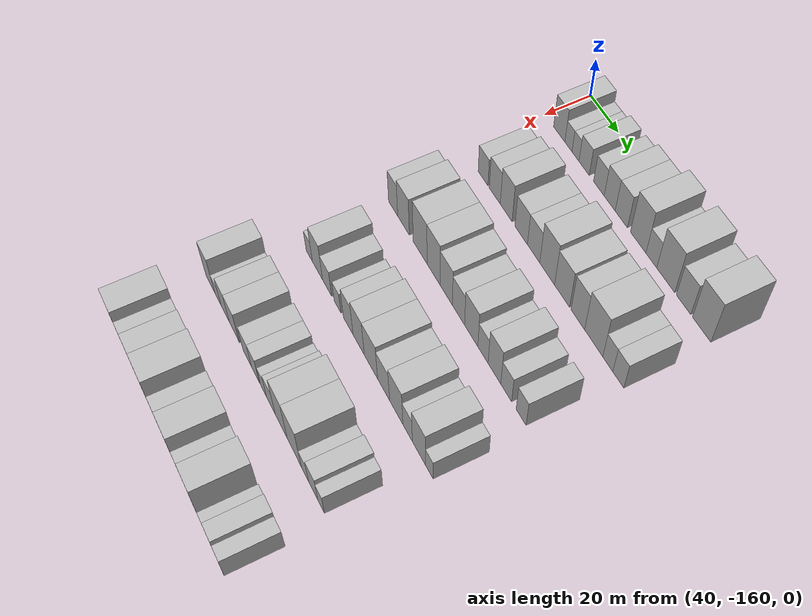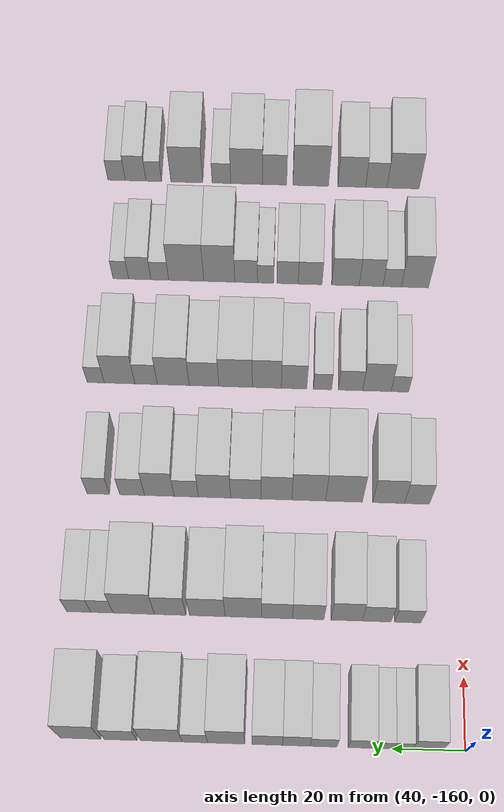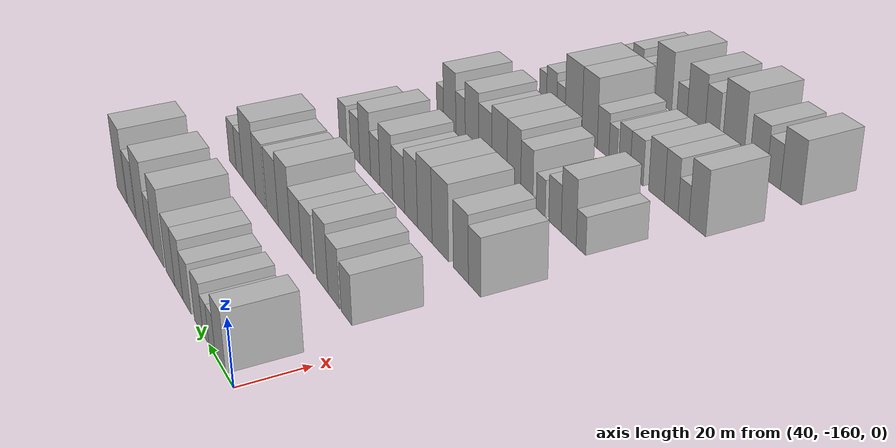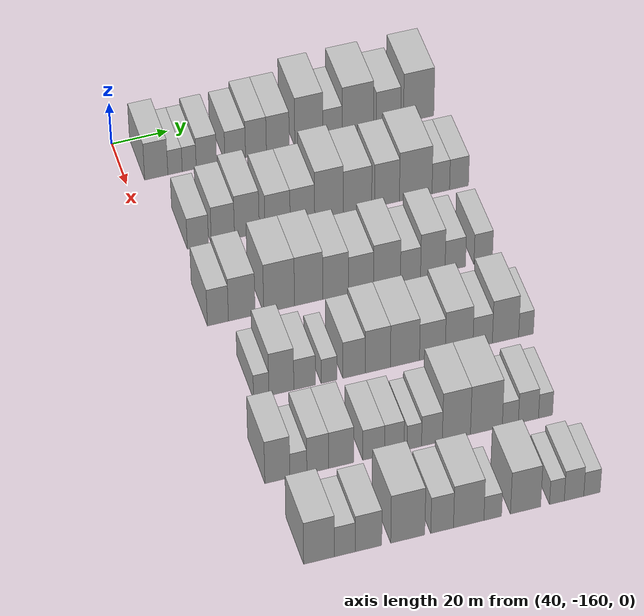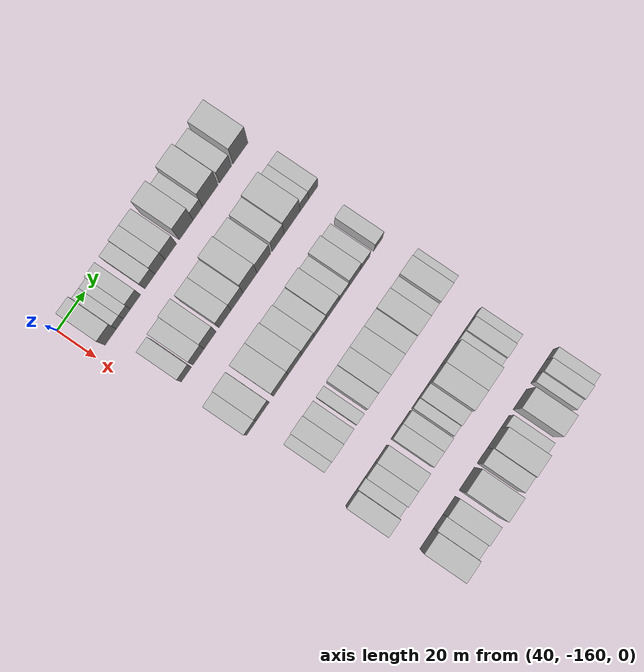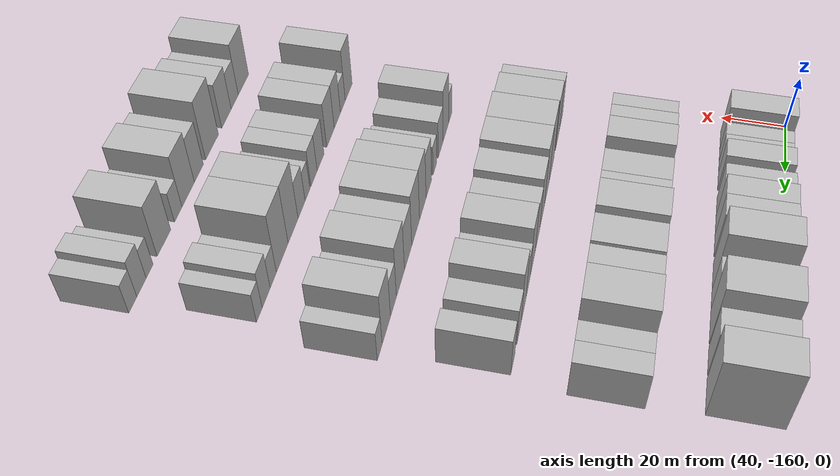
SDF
<sdf version="1.6">
 <world name="default">
  <model name="building_47">
   <static>1</static>
   <pose>50.0000 -149.4764 0 0.000000 0.000000 0.000000</pose>
   <link name="link">
    <pose>0 0 9.00 0 0 0</pose>
    <collision name="collision"><geometry><box><size>20.0000 8.2598 18.0000</size></box></geometry></collision>
    <visual name="visual">
     <cast_shadows>0</cast_shadows>
     <geometry><box><size>20.0000 8.2598 18.0000</size></box></geometry>
     <material>
      <script>
       <uri>model://HANNAS_wall/materials/scripts</uri>
       <uri>model://HANNAS_wall/materials/textures</uri>
       <name>vrc/HANNAS_wall</name>
      </script>
     </material>
    </visual>
   </link>
  </model>
  <model name="building_48">
   <static>1</static>
   <pose>50.0000 -142.7697 0 0.000000 0.000000 0.000000</pose>
   <link name="link">
    <pose>0 0 6.00 0 0 0</pose>
    <collision name="collision"><geometry><box><size>20.0000 5.1535 12.0000</size></box></geometry></collision>
    <visual name="visual">
     <cast_shadows>0</cast_shadows>
     <geometry><box><size>20.0000 5.1535 12.0000</size></box></geometry>
     <material>
      <script>
       <uri>model://HANNAS_wall/materials/scripts</uri>
       <uri>model://HANNAS_wall/materials/textures</uri>
       <name>vrc/HANNAS_wall</name>
      </script>
     </material>
    </visual>
   </link>
  </model>
  <model name="building_49">
   <static>1</static>
   <pose>50.0000 -137.7007 0 0.000000 0.000000 0.000000</pose>
   <link name="link">
    <pose>0 0 6.00 0 0 0</pose>
    <collision name="collision"><geometry><box><size>20.0000 4.9846 12.0000</size></box></geometry></collision>
    <visual name="visual">
     <cast_shadows>0</cast_shadows>
     <geometry><box><size>20.0000 4.9846 12.0000</size></box></geometry>
     <material>
      <script>
       <uri>model://HANNAS_wall/materials/scripts</uri>
       <uri>model://HANNAS_wall/materials/textures</uri>
       <name>vrc/HANNAS_wall</name>
      </script>
     </material>
    </visual>
   </link>
  </model>
  <model name="building_50">
   <static>1</static>
   <pose>50.0000 -131.5507 0 0.000000 0.000000 0.000000</pose>
   <link name="link">
    <pose>0 0 7.50 0 0 0</pose>
    <collision name="collision"><geometry><box><size>20.0000 7.3153 15.0000</size></box></geometry></collision>
    <visual name="visual">
     <cast_shadows>0</cast_shadows>
     <geometry><box><size>20.0000 7.3153 15.0000</size></box></geometry>
     <material>
      <script>
       <uri>model://HANNAS_wall/materials/scripts</uri>
       <uri>model://HANNAS_wall/materials/textures</uri>
       <name>vrc/HANNAS_wall</name>
      </script>
     </material>
    </visual>
   </link>
  </model>
  <model name="building_51">
   <static>1</static>
   <pose>50.0000 -121.2100 0 0.000000 0.000000 0.000000</pose>
   <link name="link">
    <pose>0 0 7.50 0 0 0</pose>
    <collision name="collision"><geometry><box><size>20.0000 7.3661 15.0000</size></box></geometry></collision>
    <visual name="visual">
     <cast_shadows>0</cast_shadows>
     <geometry><box><size>20.0000 7.3661 15.0000</size></box></geometry>
     <material>
      <script>
       <uri>model://HANNAS_wall/materials/scripts</uri>
       <uri>model://HANNAS_wall/materials/textures</uri>
       <name>vrc/HANNAS_wall</name>
      </script>
     </material>
    </visual>
   </link>
  </model>
  <model name="building_52">
   <static>1</static>
   <pose>50.0000 -113.7746 0 0.000000 0.000000 0.000000</pose>
   <link name="link">
    <pose>0 0 9.00 0 0 0</pose>
    <collision name="collision"><geometry><box><size>20.0000 7.5047 18.0000</size></box></geometry></collision>
    <visual name="visual">
     <cast_shadows>0</cast_shadows>
     <geometry><box><size>20.0000 7.5047 18.0000</size></box></geometry>
     <material>
      <script>
       <uri>model://HANNAS_wall/materials/scripts</uri>
       <uri>model://HANNAS_wall/materials/textures</uri>
       <name>vrc/HANNAS_wall</name>
      </script>
     </material>
    </visual>
   </link>
  </model>
  <model name="building_53">
   <static>1</static>
   <pose>50.0000 -105.8973 0 0.000000 0.000000 0.000000</pose>
   <link name="link">
    <pose>0 0 9.00 0 0 0</pose>
    <collision name="collision"><geometry><box><size>20.0000 8.2499 18.0000</size></box></geometry></collision>
    <visual name="visual">
     <cast_shadows>0</cast_shadows>
     <geometry><box><size>20.0000 8.2499 18.0000</size></box></geometry>
     <material>
      <script>
       <uri>model://HANNAS_wall/materials/scripts</uri>
       <uri>model://HANNAS_wall/materials/textures</uri>
       <name>vrc/HANNAS_wall</name>
      </script>
     </material>
    </visual>
   </link>
  </model>
  <model name="building_54">
   <static>1</static>
   <pose>50.0000 -94.7042 0 0.000000 0.000000 0.000000</pose>
   <link name="link">
    <pose>0 0 12.00 0 0 0</pose>
    <collision name="collision"><geometry><box><size>20.0000 10.1364 24.0000</size></box></geometry></collision>
    <visual name="visual">
     <cast_shadows>0</cast_shadows>
     <geometry><box><size>20.0000 10.1364 24.0000</size></box></geometry>
     <material>
      <script>
       <uri>model://HANNAS_wall/materials/scripts</uri>
       <uri>model://HANNAS_wall/materials/textures</uri>
       <name>vrc/HANNAS_wall</name>
      </script>
     </material>
    </visual>
   </link>
  </model>
  <model name="building_55">
   <static>1</static>
   <pose>50.0000 -86.1576 0 0.000000 0.000000 0.000000</pose>
   <link name="link">
    <pose>0 0 7.50 0 0 0</pose>
    <collision name="collision"><geometry><box><size>20.0000 6.9567 15.0000</size></box></geometry></collision>
    <visual name="visual">
     <cast_shadows>0</cast_shadows>
     <geometry><box><size>20.0000 6.9567 15.0000</size></box></geometry>
     <material>
      <script>
       <uri>model://HANNAS_wall/materials/scripts</uri>
       <uri>model://HANNAS_wall/materials/textures</uri>
       <name>vrc/HANNAS_wall</name>
      </script>
     </material>
    </visual>
   </link>
  </model>
  <model name="building_56">
   <static>1</static>
   <pose>50.0000 -76.9901 0 0.000000 0.000000 0.000000</pose>
   <link name="link">
    <pose>0 0 12.00 0 0 0</pose>
    <collision name="collision"><geometry><box><size>20.0000 11.3783 24.0000</size></box></geometry></collision>
    <visual name="visual">
     <cast_shadows>0</cast_shadows>
     <geometry><box><size>20.0000 11.3783 24.0000</size></box></geometry>
     <material>
      <script>
       <uri>model://HANNAS_wall/materials/scripts</uri>
       <uri>model://HANNAS_wall/materials/textures</uri>
       <name>vrc/HANNAS_wall</name>
      </script>
     </material>
    </visual>
   </link>
  </model>
  <model name="building_57">
   <static>1</static>
   <pose>50.0000 -65.8389 0 0.000000 0.000000 0.000000</pose>
   <link name="link">
    <pose>0 0 9.00 0 0 0</pose>
    <collision name="collision"><geometry><box><size>20.0000 8.9240 18.0000</size></box></geometry></collision>
    <visual name="visual">
     <cast_shadows>0</cast_shadows>
     <geometry><box><size>20.0000 8.9240 18.0000</size></box></geometry>
     <material>
      <script>
       <uri>model://HANNAS_wall/materials/scripts</uri>
       <uri>model://HANNAS_wall/materials/textures</uri>
       <name>vrc/HANNAS_wall</name>
      </script>
     </material>
    </visual>
   </link>
  </model>
  <model name="building_58">
   <static>1</static>
   <pose>50.0000 -54.8356 0 0.000000 0.000000 0.000000</pose>
   <link name="link">
    <pose>0 0 12.00 0 0 0</pose>
    <collision name="collision"><geometry><box><size>20.0000 11.0826 24.0000</size></box></geometry></collision>
    <visual name="visual">
     <cast_shadows>0</cast_shadows>
     <geometry><box><size>20.0000 11.0826 24.0000</size></box></geometry>
     <material>
      <script>
       <uri>model://HANNAS_wall/materials/scripts</uri>
       <uri>model://HANNAS_wall/materials/textures</uri>
       <name>vrc/HANNAS_wall</name>
      </script>
     </material>
    </visual>
   </link>
  </model>
  <model name="building_173">
   <static>1</static>
   <pose>85.0000 -144.4203 0 0.000000 0.000000 0.000000</pose>
   <link name="link">
    <pose>0 0 7.50 0 0 0</pose>
    <collision name="collision"><geometry><box><size>20.0000 7.4579 15.0000</size></box></geometry></collision>
    <visual name="visual">
     <cast_shadows>0</cast_shadows>
     <geometry><box><size>20.0000 7.4579 15.0000</size></box></geometry>
     <material>
      <script>
       <uri>model://HANNAS_wall/materials/scripts</uri>
       <uri>model://HANNAS_wall/materials/textures</uri>
       <name>vrc/HANNAS_wall</name>
      </script>
     </material>
    </visual>
   </link>
  </model>
  <model name="building_174">
   <static>1</static>
   <pose>85.0000 -135.6040 0 0.000000 0.000000 0.000000</pose>
   <link name="link">
    <pose>0 0 9.00 0 0 0</pose>
    <collision name="collision"><geometry><box><size>20.0000 8.1747 18.0000</size></box></geometry></collision>
    <visual name="visual">
     <cast_shadows>0</cast_shadows>
     <geometry><box><size>20.0000 8.1747 18.0000</size></box></geometry>
     <material>
      <script>
       <uri>model://HANNAS_wall/materials/scripts</uri>
       <uri>model://HANNAS_wall/materials/textures</uri>
       <name>vrc/HANNAS_wall</name>
      </script>
     </material>
    </visual>
   </link>
  </model>
  <model name="building_175">
   <static>1</static>
   <pose>85.0000 -127.1466 0 0.000000 0.000000 0.000000</pose>
   <link name="link">
    <pose>0 0 10.50 0 0 0</pose>
    <collision name="collision"><geometry><box><size>20.0000 8.7400 21.0000</size></box></geometry></collision>
    <visual name="visual">
     <cast_shadows>0</cast_shadows>
     <geometry><box><size>20.0000 8.7400 21.0000</size></box></geometry>
     <material>
      <script>
       <uri>model://HANNAS_wall/materials/scripts</uri>
       <uri>model://HANNAS_wall/materials/textures</uri>
       <name>vrc/HANNAS_wall</name>
      </script>
     </material>
    </visual>
   </link>
  </model>
  <model name="building_176">
   <static>1</static>
   <pose>85.0000 -116.3020 0 0.000000 0.000000 0.000000</pose>
   <link name="link">
    <pose>0 0 9.00 0 0 0</pose>
    <collision name="collision"><geometry><box><size>20.0000 8.9493 18.0000</size></box></geometry></collision>
    <visual name="visual">
     <cast_shadows>0</cast_shadows>
     <geometry><box><size>20.0000 8.9493 18.0000</size></box></geometry>
     <material>
      <script>
       <uri>model://HANNAS_wall/materials/scripts</uri>
       <uri>model://HANNAS_wall/materials/textures</uri>
       <name>vrc/HANNAS_wall</name>
      </script>
     </material>
    </visual>
   </link>
  </model>
  <model name="building_177">
   <static>1</static>
   <pose>85.0000 -107.4802 0 0.000000 0.000000 0.000000</pose>
   <link name="link">
    <pose>0 0 9.00 0 0 0</pose>
    <collision name="collision"><geometry><box><size>20.0000 8.6943 18.0000</size></box></geometry></collision>
    <visual name="visual">
     <cast_shadows>0</cast_shadows>
     <geometry><box><size>20.0000 8.6943 18.0000</size></box></geometry>
     <material>
      <script>
       <uri>model://HANNAS_wall/materials/scripts</uri>
       <uri>model://HANNAS_wall/materials/textures</uri>
       <name>vrc/HANNAS_wall</name>
      </script>
     </material>
    </visual>
   </link>
  </model>
  <model name="building_178">
   <static>1</static>
   <pose>85.0000 -98.0141 0 0.000000 0.000000 0.000000</pose>
   <link name="link">
    <pose>0 0 12.00 0 0 0</pose>
    <collision name="collision"><geometry><box><size>20.0000 10.2380 24.0000</size></box></geometry></collision>
    <visual name="visual">
     <cast_shadows>0</cast_shadows>
     <geometry><box><size>20.0000 10.2380 24.0000</size></box></geometry>
     <material>
      <script>
       <uri>model://HANNAS_wall/materials/scripts</uri>
       <uri>model://HANNAS_wall/materials/textures</uri>
       <name>vrc/HANNAS_wall</name>
      </script>
     </material>
    </visual>
   </link>
  </model>
  <model name="building_179">
   <static>1</static>
   <pose>85.0000 -87.8474 0 0.000000 0.000000 0.000000</pose>
   <link name="link">
    <pose>0 0 10.50 0 0 0</pose>
    <collision name="collision"><geometry><box><size>20.0000 10.0954 21.0000</size></box></geometry></collision>
    <visual name="visual">
     <cast_shadows>0</cast_shadows>
     <geometry><box><size>20.0000 10.0954 21.0000</size></box></geometry>
     <material>
      <script>
       <uri>model://HANNAS_wall/materials/scripts</uri>
       <uri>model://HANNAS_wall/materials/textures</uri>
       <name>vrc/HANNAS_wall</name>
      </script>
     </material>
    </visual>
   </link>
  </model>
  <model name="building_180">
   <static>1</static>
   <pose>85.0000 -77.3420 0 0.000000 0.000000 0.000000</pose>
   <link name="link">
    <pose>0 0 10.50 0 0 0</pose>
    <collision name="collision"><geometry><box><size>20.0000 8.9152 21.0000</size></box></geometry></collision>
    <visual name="visual">
     <cast_shadows>0</cast_shadows>
     <geometry><box><size>20.0000 8.9152 21.0000</size></box></geometry>
     <material>
      <script>
       <uri>model://HANNAS_wall/materials/scripts</uri>
       <uri>model://HANNAS_wall/materials/textures</uri>
       <name>vrc/HANNAS_wall</name>
      </script>
     </material>
    </visual>
   </link>
  </model>
  <model name="building_181">
   <static>1</static>
   <pose>85.0000 -67.0347 0 0.000000 0.000000 0.000000</pose>
   <link name="link">
    <pose>0 0 12.00 0 0 0</pose>
    <collision name="collision"><geometry><box><size>20.0000 11.6995 24.0000</size></box></geometry></collision>
    <visual name="visual">
     <cast_shadows>0</cast_shadows>
     <geometry><box><size>20.0000 11.6995 24.0000</size></box></geometry>
     <material>
      <script>
       <uri>model://HANNAS_wall/materials/scripts</uri>
       <uri>model://HANNAS_wall/materials/textures</uri>
       <name>vrc/HANNAS_wall</name>
      </script>
     </material>
    </visual>
   </link>
  </model>
  <model name="building_182">
   <static>1</static>
   <pose>85.0000 -58.0269 0 0.000000 0.000000 0.000000</pose>
   <link name="link">
    <pose>0 0 7.50 0 0 0</pose>
    <collision name="collision"><geometry><box><size>20.0000 6.3160 15.0000</size></box></geometry></collision>
    <visual name="visual">
     <cast_shadows>0</cast_shadows>
     <geometry><box><size>20.0000 6.3160 15.0000</size></box></geometry>
     <material>
      <script>
       <uri>model://HANNAS_wall/materials/scripts</uri>
       <uri>model://HANNAS_wall/materials/textures</uri>
       <name>vrc/HANNAS_wall</name>
      </script>
     </material>
    </visual>
   </link>
  </model>
  <model name="building_183">
   <static>1</static>
   <pose>85.0000 -51.4575 0 0.000000 0.000000 0.000000</pose>
   <link name="link">
    <pose>0 0 7.50 0 0 0</pose>
    <collision name="collision"><geometry><box><size>20.0000 6.8229 15.0000</size></box></geometry></collision>
    <visual name="visual">
     <cast_shadows>0</cast_shadows>
     <geometry><box><size>20.0000 6.8229 15.0000</size></box></geometry>
     <material>
      <script>
       <uri>model://HANNAS_wall/materials/scripts</uri>
       <uri>model://HANNAS_wall/materials/textures</uri>
       <name>vrc/HANNAS_wall</name>
      </script>
     </material>
    </visual>
   </link>
  </model>
  <model name="building_302">
   <static>1</static>
   <pose>120.0000 -147.3199 0 0.000000 0.000000 0.000000</pose>
   <link name="link">
    <pose>0 0 9.00 0 0 0</pose>
    <collision name="collision"><geometry><box><size>20.0000 7.2919 18.0000</size></box></geometry></collision>
    <visual name="visual">
     <cast_shadows>0</cast_shadows>
     <geometry><box><size>20.0000 7.2919 18.0000</size></box></geometry>
     <material>
      <script>
       <uri>model://HANNAS_wall/materials/scripts</uri>
       <uri>model://HANNAS_wall/materials/textures</uri>
       <name>vrc/HANNAS_wall</name>
      </script>
     </material>
    </visual>
   </link>
  </model>
  <model name="building_303">
   <static>1</static>
   <pose>120.0000 -139.0397 0 0.000000 0.000000 0.000000</pose>
   <link name="link">
    <pose>0 0 10.50 0 0 0</pose>
    <collision name="collision"><geometry><box><size>20.0000 9.2684 21.0000</size></box></geometry></collision>
    <visual name="visual">
     <cast_shadows>0</cast_shadows>
     <geometry><box><size>20.0000 9.2684 21.0000</size></box></geometry>
     <material>
      <script>
       <uri>model://HANNAS_wall/materials/scripts</uri>
       <uri>model://HANNAS_wall/materials/textures</uri>
       <name>vrc/HANNAS_wall</name>
      </script>
     </material>
    </visual>
   </link>
  </model>
  <model name="building_304">
   <static>1</static>
   <pose>120.0000 -126.0417 0 0.000000 0.000000 0.000000</pose>
   <link name="link">
    <pose>0 0 12.00 0 0 0</pose>
    <collision name="collision"><geometry><box><size>20.0000 10.7276 24.0000</size></box></geometry></collision>
    <visual name="visual">
     <cast_shadows>0</cast_shadows>
     <geometry><box><size>20.0000 10.7276 24.0000</size></box></geometry>
     <material>
      <script>
       <uri>model://HANNAS_wall/materials/scripts</uri>
       <uri>model://HANNAS_wall/materials/textures</uri>
       <name>vrc/HANNAS_wall</name>
      </script>
     </material>
    </visual>
   </link>
  </model>
  <model name="building_305">
   <static>1</static>
   <pose>120.0000 -115.7528 0 0.000000 0.000000 0.000000</pose>
   <link name="link">
    <pose>0 0 12.00 0 0 0</pose>
    <collision name="collision"><geometry><box><size>20.0000 9.8501 24.0000</size></box></geometry></collision>
    <visual name="visual">
     <cast_shadows>0</cast_shadows>
     <geometry><box><size>20.0000 9.8501 24.0000</size></box></geometry>
     <material>
      <script>
       <uri>model://HANNAS_wall/materials/scripts</uri>
       <uri>model://HANNAS_wall/materials/textures</uri>
       <name>vrc/HANNAS_wall</name>
      </script>
     </material>
    </visual>
   </link>
  </model>
  <model name="building_306">
   <static>1</static>
   <pose>120.0000 -106.3296 0 0.000000 0.000000 0.000000</pose>
   <link name="link">
    <pose>0 0 10.50 0 0 0</pose>
    <collision name="collision"><geometry><box><size>20.0000 8.9964 21.0000</size></box></geometry></collision>
    <visual name="visual">
     <cast_shadows>0</cast_shadows>
     <geometry><box><size>20.0000 8.9964 21.0000</size></box></geometry>
     <material>
      <script>
       <uri>model://HANNAS_wall/materials/scripts</uri>
       <uri>model://HANNAS_wall/materials/textures</uri>
       <name>vrc/HANNAS_wall</name>
      </script>
     </material>
    </visual>
   </link>
  </model>
  <model name="building_307">
   <static>1</static>
   <pose>120.0000 -97.4225 0 0.000000 0.000000 0.000000</pose>
   <link name="link">
    <pose>0 0 9.00 0 0 0</pose>
    <collision name="collision"><geometry><box><size>20.0000 8.8177 18.0000</size></box></geometry></collision>
    <visual name="visual">
     <cast_shadows>0</cast_shadows>
     <geometry><box><size>20.0000 8.8177 18.0000</size></box></geometry>
     <material>
      <script>
       <uri>model://HANNAS_wall/materials/scripts</uri>
       <uri>model://HANNAS_wall/materials/textures</uri>
       <name>vrc/HANNAS_wall</name>
      </script>
     </material>
    </visual>
   </link>
  </model>
  <model name="building_308">
   <static>1</static>
   <pose>120.0000 -88.2946 0 0.000000 0.000000 0.000000</pose>
   <link name="link">
    <pose>0 0 10.50 0 0 0</pose>
    <collision name="collision"><geometry><box><size>20.0000 9.4382 21.0000</size></box></geometry></collision>
    <visual name="visual">
     <cast_shadows>0</cast_shadows>
     <geometry><box><size>20.0000 9.4382 21.0000</size></box></geometry>
     <material>
      <script>
       <uri>model://HANNAS_wall/materials/scripts</uri>
       <uri>model://HANNAS_wall/materials/textures</uri>
       <name>vrc/HANNAS_wall</name>
      </script>
     </material>
    </visual>
   </link>
  </model>
  <model name="building_309">
   <static>1</static>
   <pose>120.0000 -80.0231 0 0.000000 0.000000 0.000000</pose>
   <link name="link">
    <pose>0 0 7.50 0 0 0</pose>
    <collision name="collision"><geometry><box><size>20.0000 7.1047 15.0000</size></box></geometry></collision>
    <visual name="visual">
     <cast_shadows>0</cast_shadows>
     <geometry><box><size>20.0000 7.1047 15.0000</size></box></geometry>
     <material>
      <script>
       <uri>model://HANNAS_wall/materials/scripts</uri>
       <uri>model://HANNAS_wall/materials/textures</uri>
       <name>vrc/HANNAS_wall</name>
      </script>
     </material>
    </visual>
   </link>
  </model>
  <model name="building_310">
   <static>1</static>
   <pose>120.0000 -72.1476 0 0.000000 0.000000 0.000000</pose>
   <link name="link">
    <pose>0 0 10.50 0 0 0</pose>
    <collision name="collision"><geometry><box><size>20.0000 8.6463 21.0000</size></box></geometry></collision>
    <visual name="visual">
     <cast_shadows>0</cast_shadows>
     <geometry><box><size>20.0000 8.6463 21.0000</size></box></geometry>
     <material>
      <script>
       <uri>model://HANNAS_wall/materials/scripts</uri>
       <uri>model://HANNAS_wall/materials/textures</uri>
       <name>vrc/HANNAS_wall</name>
      </script>
     </material>
    </visual>
   </link>
  </model>
  <model name="building_311">
   <static>1</static>
   <pose>120.0000 -64.1911 0 0.000000 0.000000 0.000000</pose>
   <link name="link">
    <pose>0 0 7.50 0 0 0</pose>
    <collision name="collision"><geometry><box><size>20.0000 7.2667 15.0000</size></box></geometry></collision>
    <visual name="visual">
     <cast_shadows>0</cast_shadows>
     <geometry><box><size>20.0000 7.2667 15.0000</size></box></geometry>
     <material>
      <script>
       <uri>model://HANNAS_wall/materials/scripts</uri>
       <uri>model://HANNAS_wall/materials/textures</uri>
       <name>vrc/HANNAS_wall</name>
      </script>
     </material>
    </visual>
   </link>
  </model>
  <model name="building_312">
   <static>1</static>
   <pose>120.0000 -54.2862 0 0.000000 0.000000 0.000000</pose>
   <link name="link">
    <pose>0 0 7.50 0 0 0</pose>
    <collision name="collision"><geometry><box><size>20.0000 6.5431 15.0000</size></box></geometry></collision>
    <visual name="visual">
     <cast_shadows>0</cast_shadows>
     <geometry><box><size>20.0000 6.5431 15.0000</size></box></geometry>
     <material>
      <script>
       <uri>model://HANNAS_wall/materials/scripts</uri>
       <uri>model://HANNAS_wall/materials/textures</uri>
       <name>vrc/HANNAS_wall</name>
      </script>
     </material>
    </visual>
   </link>
  </model>
  <model name="building_430">
   <static>1</static>
   <pose>155.0000 -142.4920 0 0.000000 0.000000 0.000000</pose>
   <link name="link">
    <pose>0 0 6.00 0 0 0</pose>
    <collision name="collision"><geometry><box><size>20.0000 5.2520 12.0000</size></box></geometry></collision>
    <visual name="visual">
     <cast_shadows>0</cast_shadows>
     <geometry><box><size>20.0000 5.2520 12.0000</size></box></geometry>
     <material>
      <script>
       <uri>model://HANNAS_wall/materials/scripts</uri>
       <uri>model://HANNAS_wall/materials/textures</uri>
       <name>vrc/HANNAS_wall</name>
      </script>
     </material>
    </visual>
   </link>
  </model>
  <model name="building_431">
   <static>1</static>
   <pose>155.0000 -135.5985 0 0.000000 0.000000 0.000000</pose>
   <link name="link">
    <pose>0 0 10.50 0 0 0</pose>
    <collision name="collision"><geometry><box><size>20.0000 8.5351 21.0000</size></box></geometry></collision>
    <visual name="visual">
     <cast_shadows>0</cast_shadows>
     <geometry><box><size>20.0000 8.5351 21.0000</size></box></geometry>
     <material>
      <script>
       <uri>model://HANNAS_wall/materials/scripts</uri>
       <uri>model://HANNAS_wall/materials/textures</uri>
       <name>vrc/HANNAS_wall</name>
      </script>
     </material>
    </visual>
   </link>
  </model>
  <model name="building_432">
   <static>1</static>
   <pose>155.0000 -127.6368 0 0.000000 0.000000 0.000000</pose>
   <link name="link">
    <pose>0 0 7.50 0 0 0</pose>
    <collision name="collision"><geometry><box><size>20.0000 7.3883 15.0000</size></box></geometry></collision>
    <visual name="visual">
     <cast_shadows>0</cast_shadows>
     <geometry><box><size>20.0000 7.3883 15.0000</size></box></geometry>
     <material>
      <script>
       <uri>model://HANNAS_wall/materials/scripts</uri>
       <uri>model://HANNAS_wall/materials/textures</uri>
       <name>vrc/HANNAS_wall</name>
      </script>
     </material>
    </visual>
   </link>
  </model>
  <model name="building_433">
   <static>1</static>
   <pose>155.0000 -119.2042 0 0.000000 0.000000 0.000000</pose>
   <link name="link">
    <pose>0 0 6.00 0 0 0</pose>
    <collision name="collision"><geometry><box><size>20.0000 5.4768 12.0000</size></box></geometry></collision>
    <visual name="visual">
     <cast_shadows>0</cast_shadows>
     <geometry><box><size>20.0000 5.4768 12.0000</size></box></geometry>
     <material>
      <script>
       <uri>model://HANNAS_wall/materials/scripts</uri>
       <uri>model://HANNAS_wall/materials/textures</uri>
       <name>vrc/HANNAS_wall</name>
      </script>
     </material>
    </visual>
   </link>
  </model>
  <model name="building_434">
   <static>1</static>
   <pose>155.0000 -110.6411 0 0.000000 0.000000 0.000000</pose>
   <link name="link">
    <pose>0 0 9.00 0 0 0</pose>
    <collision name="collision"><geometry><box><size>20.0000 7.6495 18.0000</size></box></geometry></collision>
    <visual name="visual">
     <cast_shadows>0</cast_shadows>
     <geometry><box><size>20.0000 7.6495 18.0000</size></box></geometry>
     <material>
      <script>
       <uri>model://HANNAS_wall/materials/scripts</uri>
       <uri>model://HANNAS_wall/materials/textures</uri>
       <name>vrc/HANNAS_wall</name>
      </script>
     </material>
    </visual>
   </link>
  </model>
  <model name="building_435">
   <static>1</static>
   <pose>155.0000 -102.4542 0 0.000000 0.000000 0.000000</pose>
   <link name="link">
    <pose>0 0 10.50 0 0 0</pose>
    <collision name="collision"><geometry><box><size>20.0000 8.7243 21.0000</size></box></geometry></collision>
    <visual name="visual">
     <cast_shadows>0</cast_shadows>
     <geometry><box><size>20.0000 8.7243 21.0000</size></box></geometry>
     <material>
      <script>
       <uri>model://HANNAS_wall/materials/scripts</uri>
       <uri>model://HANNAS_wall/materials/textures</uri>
       <name>vrc/HANNAS_wall</name>
      </script>
     </material>
    </visual>
   </link>
  </model>
  <model name="building_436">
   <static>1</static>
   <pose>155.0000 -93.0493 0 0.000000 0.000000 0.000000</pose>
   <link name="link">
    <pose>0 0 10.50 0 0 0</pose>
    <collision name="collision"><geometry><box><size>20.0000 10.0856 21.0000</size></box></geometry></collision>
    <visual name="visual">
     <cast_shadows>0</cast_shadows>
     <geometry><box><size>20.0000 10.0856 21.0000</size></box></geometry>
     <material>
      <script>
       <uri>model://HANNAS_wall/materials/scripts</uri>
       <uri>model://HANNAS_wall/materials/textures</uri>
       <name>vrc/HANNAS_wall</name>
      </script>
     </material>
    </visual>
   </link>
  </model>
  <model name="building_437">
   <static>1</static>
   <pose>155.0000 -83.5415 0 0.000000 0.000000 0.000000</pose>
   <link name="link">
    <pose>0 0 9.00 0 0 0</pose>
    <collision name="collision"><geometry><box><size>20.0000 8.9300 18.0000</size></box></geometry></collision>
    <visual name="visual">
     <cast_shadows>0</cast_shadows>
     <geometry><box><size>20.0000 8.9300 18.0000</size></box></geometry>
     <material>
      <script>
       <uri>model://HANNAS_wall/materials/scripts</uri>
       <uri>model://HANNAS_wall/materials/textures</uri>
       <name>vrc/HANNAS_wall</name>
      </script>
     </material>
    </visual>
   </link>
  </model>
  <model name="building_438">
   <static>1</static>
   <pose>155.0000 -74.2567 0 0.000000 0.000000 0.000000</pose>
   <link name="link">
    <pose>0 0 10.50 0 0 0</pose>
    <collision name="collision"><geometry><box><size>20.0000 9.6395 21.0000</size></box></geometry></collision>
    <visual name="visual">
     <cast_shadows>0</cast_shadows>
     <geometry><box><size>20.0000 9.6395 21.0000</size></box></geometry>
     <material>
      <script>
       <uri>model://HANNAS_wall/materials/scripts</uri>
       <uri>model://HANNAS_wall/materials/textures</uri>
       <name>vrc/HANNAS_wall</name>
      </script>
     </material>
    </visual>
   </link>
  </model>
  <model name="building_439">
   <static>1</static>
   <pose>155.0000 -66.0427 0 0.000000 0.000000 0.000000</pose>
   <link name="link">
    <pose>0 0 7.50 0 0 0</pose>
    <collision name="collision"><geometry><box><size>20.0000 6.7883 15.0000</size></box></geometry></collision>
    <visual name="visual">
     <cast_shadows>0</cast_shadows>
     <geometry><box><size>20.0000 6.7883 15.0000</size></box></geometry>
     <material>
      <script>
       <uri>model://HANNAS_wall/materials/scripts</uri>
       <uri>model://HANNAS_wall/materials/textures</uri>
       <name>vrc/HANNAS_wall</name>
      </script>
     </material>
    </visual>
   </link>
  </model>
  <model name="building_440">
   <static>1</static>
   <pose>155.0000 -58.0343 0 0.000000 0.000000 0.000000</pose>
   <link name="link">
    <pose>0 0 10.50 0 0 0</pose>
    <collision name="collision"><geometry><box><size>20.0000 9.2285 21.0000</size></box></geometry></collision>
    <visual name="visual">
     <cast_shadows>0</cast_shadows>
     <geometry><box><size>20.0000 9.2285 21.0000</size></box></geometry>
     <material>
      <script>
       <uri>model://HANNAS_wall/materials/scripts</uri>
       <uri>model://HANNAS_wall/materials/textures</uri>
       <name>vrc/HANNAS_wall</name>
      </script>
     </material>
    </visual>
   </link>
  </model>
  <model name="building_441">
   <static>1</static>
   <pose>155.0000 -50.8350 0 0.000000 0.000000 0.000000</pose>
   <link name="link">
    <pose>0 0 6.00 0 0 0</pose>
    <collision name="collision"><geometry><box><size>20.0000 5.1701 12.0000</size></box></geometry></collision>
    <visual name="visual">
     <cast_shadows>0</cast_shadows>
     <geometry><box><size>20.0000 5.1701 12.0000</size></box></geometry>
     <material>
      <script>
       <uri>model://HANNAS_wall/materials/scripts</uri>
       <uri>model://HANNAS_wall/materials/textures</uri>
       <name>vrc/HANNAS_wall</name>
      </script>
     </material>
    </visual>
   </link>
  </model>
  <model name="building_555">
   <static>1</static>
   <pose>190.0000 -147.2677 0 0.000000 0.000000 0.000000</pose>
   <link name="link">
    <pose>0 0 10.50 0 0 0</pose>
    <collision name="collision"><geometry><box><size>20.0000 8.4236 21.0000</size></box></geometry></collision>
    <visual name="visual">
     <cast_shadows>0</cast_shadows>
     <geometry><box><size>20.0000 8.4236 21.0000</size></box></geometry>
     <material>
      <script>
       <uri>model://HANNAS_wall/materials/scripts</uri>
       <uri>model://HANNAS_wall/materials/textures</uri>
       <name>vrc/HANNAS_wall</name>
      </script>
     </material>
    </visual>
   </link>
  </model>
  <model name="building_556">
   <static>1</static>
   <pose>190.0000 -140.1987 0 0.000000 0.000000 0.000000</pose>
   <link name="link">
    <pose>0 0 6.00 0 0 0</pose>
    <collision name="collision"><geometry><box><size>20.0000 5.7145 12.0000</size></box></geometry></collision>
    <visual name="visual">
     <cast_shadows>0</cast_shadows>
     <geometry><box><size>20.0000 5.7145 12.0000</size></box></geometry>
     <material>
      <script>
       <uri>model://HANNAS_wall/materials/scripts</uri>
       <uri>model://HANNAS_wall/materials/textures</uri>
       <name>vrc/HANNAS_wall</name>
      </script>
     </material>
    </visual>
   </link>
  </model>
  <model name="building_557">
   <static>1</static>
   <pose>190.0000 -133.6718 0 0.000000 0.000000 0.000000</pose>
   <link name="link">
    <pose>0 0 9.00 0 0 0</pose>
    <collision name="collision"><geometry><box><size>20.0000 7.3392 18.0000</size></box></geometry></collision>
    <visual name="visual">
     <cast_shadows>0</cast_shadows>
     <geometry><box><size>20.0000 7.3392 18.0000</size></box></geometry>
     <material>
      <script>
       <uri>model://HANNAS_wall/materials/scripts</uri>
       <uri>model://HANNAS_wall/materials/textures</uri>
       <name>vrc/HANNAS_wall</name>
      </script>
     </material>
    </visual>
   </link>
  </model>
  <model name="building_558">
   <static>1</static>
   <pose>190.0000 -125.7311 0 0.000000 0.000000 0.000000</pose>
   <link name="link">
    <pose>0 0 9.00 0 0 0</pose>
    <collision name="collision"><geometry><box><size>20.0000 8.5422 18.0000</size></box></geometry></collision>
    <visual name="visual">
     <cast_shadows>0</cast_shadows>
     <geometry><box><size>20.0000 8.5422 18.0000</size></box></geometry>
     <material>
      <script>
       <uri>model://HANNAS_wall/materials/scripts</uri>
       <uri>model://HANNAS_wall/materials/textures</uri>
       <name>vrc/HANNAS_wall</name>
      </script>
     </material>
    </visual>
   </link>
  </model>
  <model name="building_559">
   <static>1</static>
   <pose>190.0000 -114.7567 0 0.000000 0.000000 0.000000</pose>
   <link name="link">
    <pose>0 0 7.50 0 0 0</pose>
    <collision name="collision"><geometry><box><size>20.0000 7.4065 15.0000</size></box></geometry></collision>
    <visual name="visual">
     <cast_shadows>0</cast_shadows>
     <geometry><box><size>20.0000 7.4065 15.0000</size></box></geometry>
     <material>
      <script>
       <uri>model://HANNAS_wall/materials/scripts</uri>
       <uri>model://HANNAS_wall/materials/textures</uri>
       <name>vrc/HANNAS_wall</name>
      </script>
     </material>
    </visual>
   </link>
  </model>
  <model name="building_560">
   <static>1</static>
   <pose>190.0000 -107.7345 0 0.000000 0.000000 0.000000</pose>
   <link name="link">
    <pose>0 0 7.50 0 0 0</pose>
    <collision name="collision"><geometry><box><size>20.0000 6.6380 15.0000</size></box></geometry></collision>
    <visual name="visual">
     <cast_shadows>0</cast_shadows>
     <geometry><box><size>20.0000 6.6380 15.0000</size></box></geometry>
     <material>
      <script>
       <uri>model://HANNAS_wall/materials/scripts</uri>
       <uri>model://HANNAS_wall/materials/textures</uri>
       <name>vrc/HANNAS_wall</name>
      </script>
     </material>
    </visual>
   </link>
  </model>
  <model name="building_561">
   <static>1</static>
   <pose>190.0000 -100.9397 0 0.000000 0.000000 0.000000</pose>
   <link name="link">
    <pose>0 0 6.00 0 0 0</pose>
    <collision name="collision"><geometry><box><size>20.0000 4.9517 12.0000</size></box></geometry></collision>
    <visual name="visual">
     <cast_shadows>0</cast_shadows>
     <geometry><box><size>20.0000 4.9517 12.0000</size></box></geometry>
     <material>
      <script>
       <uri>model://HANNAS_wall/materials/scripts</uri>
       <uri>model://HANNAS_wall/materials/textures</uri>
       <name>vrc/HANNAS_wall</name>
      </script>
     </material>
    </visual>
   </link>
  </model>
  <model name="building_562">
   <static>1</static>
   <pose>190.0000 -94.9238 0 0.000000 0.000000 0.000000</pose>
   <link name="link">
    <pose>0 0 7.50 0 0 0</pose>
    <collision name="collision"><geometry><box><size>20.0000 7.0800 15.0000</size></box></geometry></collision>
    <visual name="visual">
     <cast_shadows>0</cast_shadows>
     <geometry><box><size>20.0000 7.0800 15.0000</size></box></geometry>
     <material>
      <script>
       <uri>model://HANNAS_wall/materials/scripts</uri>
       <uri>model://HANNAS_wall/materials/textures</uri>
       <name>vrc/HANNAS_wall</name>
      </script>
     </material>
    </visual>
   </link>
  </model>
  <model name="building_563">
   <static>1</static>
   <pose>190.0000 -86.5678 0 0.000000 0.000000 0.000000</pose>
   <link name="link">
    <pose>0 0 12.00 0 0 0</pose>
    <collision name="collision"><geometry><box><size>20.0000 9.6321 24.0000</size></box></geometry></collision>
    <visual name="visual">
     <cast_shadows>0</cast_shadows>
     <geometry><box><size>20.0000 9.6321 24.0000</size></box></geometry>
     <material>
      <script>
       <uri>model://HANNAS_wall/materials/scripts</uri>
       <uri>model://HANNAS_wall/materials/textures</uri>
       <name>vrc/HANNAS_wall</name>
      </script>
     </material>
    </visual>
   </link>
  </model>
  <model name="building_564">
   <static>1</static>
   <pose>190.0000 -76.2899 0 0.000000 0.000000 0.000000</pose>
   <link name="link">
    <pose>0 0 12.00 0 0 0</pose>
    <collision name="collision"><geometry><box><size>20.0000 10.9236 24.0000</size></box></geometry></collision>
    <visual name="visual">
     <cast_shadows>0</cast_shadows>
     <geometry><box><size>20.0000 10.9236 24.0000</size></box></geometry>
     <material>
      <script>
       <uri>model://HANNAS_wall/materials/scripts</uri>
       <uri>model://HANNAS_wall/materials/textures</uri>
       <name>vrc/HANNAS_wall</name>
      </script>
     </material>
    </visual>
   </link>
  </model>
  <model name="building_565">
   <static>1</static>
   <pose>190.0000 -68.0641 0 0.000000 0.000000 0.000000</pose>
   <link name="link">
    <pose>0 0 6.00 0 0 0</pose>
    <collision name="collision"><geometry><box><size>20.0000 5.5279 12.0000</size></box></geometry></collision>
    <visual name="visual">
     <cast_shadows>0</cast_shadows>
     <geometry><box><size>20.0000 5.5279 12.0000</size></box></geometry>
     <material>
      <script>
       <uri>model://HANNAS_wall/materials/scripts</uri>
       <uri>model://HANNAS_wall/materials/textures</uri>
       <name>vrc/HANNAS_wall</name>
      </script>
     </material>
    </visual>
   </link>
  </model>
  <model name="building_566">
   <static>1</static>
   <pose>190.0000 -61.8291 0 0.000000 0.000000 0.000000</pose>
   <link name="link">
    <pose>0 0 7.50 0 0 0</pose>
    <collision name="collision"><geometry><box><size>20.0000 6.9421 15.0000</size></box></geometry></collision>
    <visual name="visual">
     <cast_shadows>0</cast_shadows>
     <geometry><box><size>20.0000 6.9421 15.0000</size></box></geometry>
     <material>
      <script>
       <uri>model://HANNAS_wall/materials/scripts</uri>
       <uri>model://HANNAS_wall/materials/textures</uri>
       <name>vrc/HANNAS_wall</name>
      </script>
     </material>
    </visual>
   </link>
  </model>
  <model name="building_567">
   <static>1</static>
   <pose>190.0000 -55.9356 0 0.000000 0.000000 0.000000</pose>
   <link name="link">
    <pose>0 0 6.00 0 0 0</pose>
    <collision name="collision"><geometry><box><size>20.0000 4.8449 12.0000</size></box></geometry></collision>
    <visual name="visual">
     <cast_shadows>0</cast_shadows>
     <geometry><box><size>20.0000 4.8449 12.0000</size></box></geometry>
     <material>
      <script>
       <uri>model://HANNAS_wall/materials/scripts</uri>
       <uri>model://HANNAS_wall/materials/textures</uri>
       <name>vrc/HANNAS_wall</name>
      </script>
     </material>
    </visual>
   </link>
  </model>
  <model name="building_687">
   <static>1</static>
   <pose>225.0000 -143.7771 0 0.000000 0.000000 0.000000</pose>
   <link name="link">
    <pose>0 0 10.50 0 0 0</pose>
    <collision name="collision"><geometry><box><size>20.0000 10.2357 21.0000</size></box></geometry></collision>
    <visual name="visual">
     <cast_shadows>0</cast_shadows>
     <geometry><box><size>20.0000 10.2357 21.0000</size></box></geometry>
     <material>
      <script>
       <uri>model://HANNAS_wall/materials/scripts</uri>
       <uri>model://HANNAS_wall/materials/textures</uri>
       <name>vrc/HANNAS_wall</name>
      </script>
     </material>
    </visual>
   </link>
  </model>
  <model name="building_688">
   <static>1</static>
   <pose>225.0000 -135.2194 0 0.000000 0.000000 0.000000</pose>
   <link name="link">
    <pose>0 0 7.50 0 0 0</pose>
    <collision name="collision"><geometry><box><size>20.0000 6.8797 15.0000</size></box></geometry></collision>
    <visual name="visual">
     <cast_shadows>0</cast_shadows>
     <geometry><box><size>20.0000 6.8797 15.0000</size></box></geometry>
     <material>
      <script>
       <uri>model://HANNAS_wall/materials/scripts</uri>
       <uri>model://HANNAS_wall/materials/textures</uri>
       <name>vrc/HANNAS_wall</name>
      </script>
     </material>
    </visual>
   </link>
  </model>
  <model name="building_689">
   <static>1</static>
   <pose>225.0000 -127.3559 0 0.000000 0.000000 0.000000</pose>
   <link name="link">
    <pose>0 0 9.00 0 0 0</pose>
    <collision name="collision"><geometry><box><size>20.0000 8.8473 18.0000</size></box></geometry></collision>
    <visual name="visual">
     <cast_shadows>0</cast_shadows>
     <geometry><box><size>20.0000 8.8473 18.0000</size></box></geometry>
     <material>
      <script>
       <uri>model://HANNAS_wall/materials/scripts</uri>
       <uri>model://HANNAS_wall/materials/textures</uri>
       <name>vrc/HANNAS_wall</name>
      </script>
     </material>
    </visual>
   </link>
  </model>
  <model name="building_690">
   <static>1</static>
   <pose>225.0000 -114.2438 0 0.000000 0.000000 0.000000</pose>
   <link name="link">
    <pose>0 0 12.00 0 0 0</pose>
    <collision name="collision"><geometry><box><size>20.0000 11.3769 24.0000</size></box></geometry></collision>
    <visual name="visual">
     <cast_shadows>0</cast_shadows>
     <geometry><box><size>20.0000 11.3769 24.0000</size></box></geometry>
     <material>
      <script>
       <uri>model://HANNAS_wall/materials/scripts</uri>
       <uri>model://HANNAS_wall/materials/textures</uri>
       <name>vrc/HANNAS_wall</name>
      </script>
     </material>
    </visual>
   </link>
  </model>
  <model name="building_691">
   <static>1</static>
   <pose>225.0000 -102.7457 0 0.000000 0.000000 0.000000</pose>
   <link name="link">
    <pose>0 0 9.00 0 0 0</pose>
    <collision name="collision"><geometry><box><size>20.0000 7.6193 18.0000</size></box></geometry></collision>
    <visual name="visual">
     <cast_shadows>0</cast_shadows>
     <geometry><box><size>20.0000 7.6193 18.0000</size></box></geometry>
     <material>
      <script>
       <uri>model://HANNAS_wall/materials/scripts</uri>
       <uri>model://HANNAS_wall/materials/textures</uri>
       <name>vrc/HANNAS_wall</name>
      </script>
     </material>
    </visual>
   </link>
  </model>
  <model name="building_692">
   <static>1</static>
   <pose>225.0000 -93.8158 0 0.000000 0.000000 0.000000</pose>
   <link name="link">
    <pose>0 0 10.50 0 0 0</pose>
    <collision name="collision"><geometry><box><size>20.0000 10.2404 21.0000</size></box></geometry></collision>
    <visual name="visual">
     <cast_shadows>0</cast_shadows>
     <geometry><box><size>20.0000 10.2404 21.0000</size></box></geometry>
     <material>
      <script>
       <uri>model://HANNAS_wall/materials/scripts</uri>
       <uri>model://HANNAS_wall/materials/textures</uri>
       <name>vrc/HANNAS_wall</name>
      </script>
     </material>
    </visual>
   </link>
  </model>
  <model name="building_693">
   <static>1</static>
   <pose>225.0000 -85.7172 0 0.000000 0.000000 0.000000</pose>
   <link name="link">
    <pose>0 0 6.00 0 0 0</pose>
    <collision name="collision"><geometry><box><size>20.0000 5.9568 12.0000</size></box></geometry></collision>
    <visual name="visual">
     <cast_shadows>0</cast_shadows>
     <geometry><box><size>20.0000 5.9568 12.0000</size></box></geometry>
     <material>
      <script>
       <uri>model://HANNAS_wall/materials/scripts</uri>
       <uri>model://HANNAS_wall/materials/textures</uri>
       <name>vrc/HANNAS_wall</name>
      </script>
     </material>
    </visual>
   </link>
  </model>
  <model name="building_694">
   <static>1</static>
   <pose>225.0000 -74.6246 0 0.000000 0.000000 0.000000</pose>
   <link name="link">
    <pose>0 0 10.50 0 0 0</pose>
    <collision name="collision"><geometry><box><size>20.0000 10.2285 21.0000</size></box></geometry></collision>
    <visual name="visual">
     <cast_shadows>0</cast_shadows>
     <geometry><box><size>20.0000 10.2285 21.0000</size></box></geometry>
     <material>
      <script>
       <uri>model://HANNAS_wall/materials/scripts</uri>
       <uri>model://HANNAS_wall/materials/textures</uri>
       <name>vrc/HANNAS_wall</name>
      </script>
     </material>
    </visual>
   </link>
  </model>
  <model name="building_695">
   <static>1</static>
   <pose>225.0000 -64.0054 0 0.000000 0.000000 0.000000</pose>
   <link name="link">
    <pose>0 0 6.00 0 0 0</pose>
    <collision name="collision"><geometry><box><size>20.0000 5.0098 12.0000</size></box></geometry></collision>
    <visual name="visual">
     <cast_shadows>0</cast_shadows>
     <geometry><box><size>20.0000 5.0098 12.0000</size></box></geometry>
     <material>
      <script>
       <uri>model://HANNAS_wall/materials/scripts</uri>
       <uri>model://HANNAS_wall/materials/textures</uri>
       <name>vrc/HANNAS_wall</name>
      </script>
     </material>
    </visual>
   </link>
  </model>
  <model name="building_696">
   <static>1</static>
   <pose>225.0000 -58.1881 0 0.000000 0.000000 0.000000</pose>
   <link name="link">
    <pose>0 0 7.50 0 0 0</pose>
    <collision name="collision"><geometry><box><size>20.0000 6.6249 15.0000</size></box></geometry></collision>
    <visual name="visual">
     <cast_shadows>0</cast_shadows>
     <geometry><box><size>20.0000 6.6249 15.0000</size></box></geometry>
     <material>
      <script>
       <uri>model://HANNAS_wall/materials/scripts</uri>
       <uri>model://HANNAS_wall/materials/textures</uri>
       <name>vrc/HANNAS_wall</name>
      </script>
     </material>
    </visual>
   </link>
  </model>
  <model name="building_697">
   <static>1</static>
   <pose>225.0000 -52.0890 0 0.000000 0.000000 0.000000</pose>
   <link name="link">
    <pose>0 0 6.00 0 0 0</pose>
    <collision name="collision"><geometry><box><size>20.0000 5.5732 12.0000</size></box></geometry></collision>
    <visual name="visual">
     <cast_shadows>0</cast_shadows>
     <geometry><box><size>20.0000 5.5732 12.0000</size></box></geometry>
     <material>
      <script>
       <uri>model://HANNAS_wall/materials/scripts</uri>
       <uri>model://HANNAS_wall/materials/textures</uri>
       <name>vrc/HANNAS_wall</name>
      </script>
     </material>
    </visual>
   </link>
  </model>
 </world>
</sdf>
